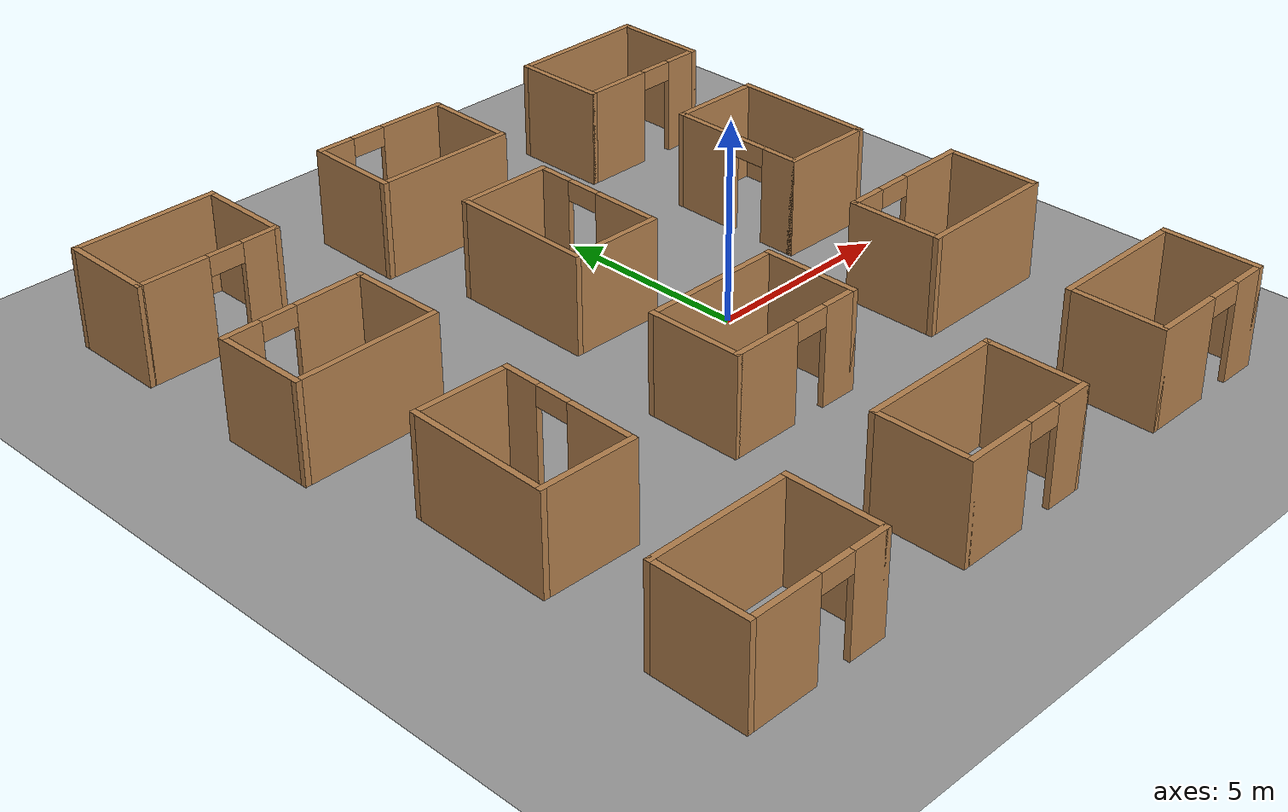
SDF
<sdf version="1.6">
 <world name="default">
  <light name="sun" type="directional">
   <pose>0 0 10 0 -0 0</pose>
   <diffuse>0.8 0.8 0.8 1</diffuse>
   <specular>0.2 0.2 0.2 1</specular>
   <attenuation>
    <range>1000</range>
    <constant>0.9</constant>
    <linear>0.01</linear>
    <quadratic>0.001</quadratic>
   </attenuation>
   <direction>0.5 0.1 -0.9</direction>
  </light>
  <scene><ambient>0.4 0.4 0.4 1</ambient><background>0.7 0.7 0.7 1</background><shadows>1</shadows></scene>
  <physics name="default_physics" default="0" type="ode">
   <max_step_size>0.01</max_step_size>
   <real_time_factor>1</real_time_factor>
   <real_time_update_rate>100</real_time_update_rate>
  </physics>
  <model name="ground_plane_0">
   <static>1</static>
   <link name="link">
    <collision name="collision">
     <geometry><plane><normal>0 0 1</normal><size>100 100</size></plane></geometry>
     <surface><friction><ode><mu>100</mu><mu2>50</mu2></ode></friction></surface>
    </collision>
    <visual name="visual">
     <cast_shadows>0</cast_shadows>
     <geometry><plane><normal>0 0 1</normal><size>100 100</size></plane></geometry>
     <material>
      <script><uri>file://media/materials/scripts/gazebo.material</uri><name>Gazebo/Grey</name></script>
     </material>
    </visual>
    <velocity_decay><linear>0</linear><angular>0</angular></velocity_decay>
   </link>
   <pose>0.497681 0 0 0 -0 0</pose>
  </model>
  <gravity>0 0 -9.8</gravity>
  <magnetic_field>6e-06 2.3e-05 -4.2e-05</magnetic_field>
  <atmosphere type="adiabatic"/>
  <spherical_coordinates>
   <surface_model>EARTH_WGS84</surface_model>
   <latitude_deg>0</latitude_deg>
   <longitude_deg>0</longitude_deg>
   <elevation>0</elevation>
   <heading_deg>0</heading_deg>
  </spherical_coordinates>
  <model name="Small_Room">
   <pose>-2.17108 3.18261 0 0 -0 1.55876</pose>
   <link name="Wall_0">
    <pose>0 -1.175 0 0 -0 0</pose>
    <visual name="Wall_0_Visual_0">
     <pose>-0.9525 0 1.25 0 -0 0</pose>
     <geometry><box><size>1.845 0.15 2.5</size></box></geometry>
     <material>
      <script><uri>file://media/materials/scripts/gazebo.material</uri><name>Gazebo/Wood</name></script>
      <ambient>1 1 1 1</ambient>
     </material>
     <meta><layer>0</layer></meta>
    </visual>
    <collision name="Wall_0_Collision_0">
     <geometry><box><size>1.845 0.15 2.5</size></box></geometry>
     <pose>-0.9525 0 1.25 0 -0 0</pose>
    </collision>
    <visual name="Wall_0_Visual_1">
     <pose>1.3725 0 1.25 0 -0 0</pose>
     <geometry><box><size>1.005 0.15 2.5</size></box></geometry>
     <material>
      <script><uri>file://media/materials/scripts/gazebo.material</uri><name>Gazebo/Wood</name></script>
      <ambient>1 1 1 1</ambient>
     </material>
     <meta><layer>0</layer></meta>
    </visual>
    <collision name="Wall_0_Collision_1">
     <geometry><box><size>1.005 0.15 2.5</size></box></geometry>
     <pose>1.3725 0 1.25 0 -0 0</pose>
    </collision>
    <visual name="Wall_0_Visual_2">
     <pose>0.42 0 2.25 0 -0 0</pose>
     <geometry><box><size>0.9 0.15 0.5</size></box></geometry>
     <material>
      <script><uri>file://media/materials/scripts/gazebo.material</uri><name>Gazebo/Wood</name></script>
      <ambient>1 1 1 1</ambient>
     </material>
     <meta><layer>0</layer></meta>
    </visual>
    <collision name="Wall_0_Collision_2">
     <geometry><box><size>0.9 0.15 0.5</size></box></geometry>
     <pose>0.42 0 2.25 0 -0 0</pose>
    </collision>
   </link>
   <link name="Wall_1">
    <collision name="Wall_1_Collision">
     <geometry><box><size>2.5 0.15 2.5</size></box></geometry>
     <pose>0 0 1.25 0 -0 0</pose>
    </collision>
    <visual name="Wall_1_Visual">
     <pose>0 0 1.25 0 -0 0</pose>
     <geometry><box><size>2.5 0.15 2.5</size></box></geometry>
     <material>
      <script><uri>file://media/materials/scripts/gazebo.material</uri><name>Gazebo/Wood</name></script>
      <ambient>1 1 1 1</ambient>
     </material>
     <meta><layer>0</layer></meta>
    </visual>
    <pose>1.8 0 0 0 -0 1.5708</pose>
   </link>
   <link name="Wall_2">
    <collision name="Wall_2_Collision">
     <geometry><box><size>3.75 0.15 2.5</size></box></geometry>
     <pose>0 0 1.25 0 -0 0</pose>
    </collision>
    <visual name="Wall_2_Visual">
     <pose>0 0 1.25 0 -0 0</pose>
     <geometry><box><size>3.75 0.15 2.5</size></box></geometry>
     <material>
      <script><uri>file://media/materials/scripts/gazebo.material</uri><name>Gazebo/Wood</name></script>
      <ambient>0.760784 0.662745 0.627451 1</ambient>
     </material>
     <meta><layer>0</layer></meta>
    </visual>
    <pose>0 1.175 0 0 -0 3.14159</pose>
   </link>
   <link name="Wall_3">
    <collision name="Wall_3_Collision">
     <geometry><box><size>2.5 0.15 2.5</size></box></geometry>
     <pose>0 0 1.25 0 -0 0</pose>
    </collision>
    <visual name="Wall_3_Visual">
     <pose>0 0 1.25 0 -0 0</pose>
     <geometry><box><size>2.5 0.15 2.5</size></box></geometry>
     <material>
      <script><uri>file://media/materials/scripts/gazebo.material</uri><name>Gazebo/Wood</name></script>
      <ambient>0.760784 0.662745 0.627451 1</ambient>
     </material>
     <meta><layer>0</layer></meta>
    </visual>
    <pose>-1.8 0 0 0 0 -1.5708</pose>
   </link>
   <static>1</static>
  </model>
  <model name="Small_Room_clone">
   <pose>-8.6761 -2.62638 0 0 -0 1.54961</pose>
   <link name="Wall_0">
    <pose>0 -1.175 0 0 -0 0</pose>
    <visual name="Wall_0_Visual_0">
     <pose>-0.9525 0 1.25 0 -0 0</pose>
     <geometry><box><size>1.845 0.15 2.5</size></box></geometry>
     <material>
      <script><uri>file://media/materials/scripts/gazebo.material</uri><name>Gazebo/Wood</name></script>
      <ambient>1 1 1 1</ambient>
     </material>
     <meta><layer>0</layer></meta>
    </visual>
    <collision name="Wall_0_Collision_0">
     <geometry><box><size>1.845 0.15 2.5</size></box></geometry>
     <pose>-0.9525 0 1.25 0 -0 0</pose>
    </collision>
    <visual name="Wall_0_Visual_1">
     <pose>1.3725 0 1.25 0 -0 0</pose>
     <geometry><box><size>1.005 0.15 2.5</size></box></geometry>
     <material>
      <script><uri>file://media/materials/scripts/gazebo.material</uri><name>Gazebo/Wood</name></script>
      <ambient>1 1 1 1</ambient>
     </material>
     <meta><layer>0</layer></meta>
    </visual>
    <collision name="Wall_0_Collision_1">
     <geometry><box><size>1.005 0.15 2.5</size></box></geometry>
     <pose>1.3725 0 1.25 0 -0 0</pose>
    </collision>
    <visual name="Wall_0_Visual_2">
     <pose>0.42 0 2.25 0 -0 0</pose>
     <geometry><box><size>0.9 0.15 0.5</size></box></geometry>
     <material>
      <script><uri>file://media/materials/scripts/gazebo.material</uri><name>Gazebo/Wood</name></script>
      <ambient>1 1 1 1</ambient>
     </material>
     <meta><layer>0</layer></meta>
    </visual>
    <collision name="Wall_0_Collision_2">
     <geometry><box><size>0.9 0.15 0.5</size></box></geometry>
     <pose>0.42 0 2.25 0 -0 0</pose>
    </collision>
   </link>
   <link name="Wall_1">
    <collision name="Wall_1_Collision">
     <geometry><box><size>2.5 0.15 2.5</size></box></geometry>
     <pose>0 0 1.25 0 -0 0</pose>
    </collision>
    <visual name="Wall_1_Visual">
     <pose>0 0 1.25 0 -0 0</pose>
     <geometry><box><size>2.5 0.15 2.5</size></box></geometry>
     <material>
      <script><uri>file://media/materials/scripts/gazebo.material</uri><name>Gazebo/Wood</name></script>
      <ambient>1 1 1 1</ambient>
     </material>
     <meta><layer>0</layer></meta>
    </visual>
    <pose>1.8 0 0 0 -0 1.5708</pose>
   </link>
   <link name="Wall_2">
    <collision name="Wall_2_Collision">
     <geometry><box><size>3.75 0.15 2.5</size></box></geometry>
     <pose>0 0 1.25 0 -0 0</pose>
    </collision>
    <visual name="Wall_2_Visual">
     <pose>0 0 1.25 0 -0 0</pose>
     <geometry><box><size>3.75 0.15 2.5</size></box></geometry>
     <material>
      <script><uri>file://media/materials/scripts/gazebo.material</uri><name>Gazebo/Wood</name></script>
      <ambient>0.760784 0.662745 0.627451 1</ambient>
     </material>
     <meta><layer>0</layer></meta>
    </visual>
    <pose>0 1.175 0 0 -0 3.14159</pose>
   </link>
   <link name="Wall_3">
    <collision name="Wall_3_Collision">
     <geometry><box><size>2.5 0.15 2.5</size></box></geometry>
     <pose>0 0 1.25 0 -0 0</pose>
    </collision>
    <visual name="Wall_3_Visual">
     <pose>0 0 1.25 0 -0 0</pose>
     <geometry><box><size>2.5 0.15 2.5</size></box></geometry>
     <material>
      <script><uri>file://media/materials/scripts/gazebo.material</uri><name>Gazebo/Wood</name></script>
      <ambient>0.760784 0.662745 0.627451 1</ambient>
     </material>
     <meta><layer>0</layer></meta>
    </visual>
    <pose>-1.8 0 0 0 0 -1.5708</pose>
   </link>
   <static>1</static>
  </model>
  <model name="Small_Room_clone_0">
   <pose>4.50171 -2.53332 0 0 0 -3.13544</pose>
   <link name="Wall_0">
    <pose>0 -1.175 0 0 -0 0</pose>
    <visual name="Wall_0_Visual_0">
     <pose>-0.9525 0 1.25 0 -0 0</pose>
     <geometry><box><size>1.845 0.15 2.5</size></box></geometry>
     <material>
      <script><uri>file://media/materials/scripts/gazebo.material</uri><name>Gazebo/Wood</name></script>
      <ambient>1 1 1 1</ambient>
     </material>
     <meta><layer>0</layer></meta>
    </visual>
    <collision name="Wall_0_Collision_0">
     <geometry><box><size>1.845 0.15 2.5</size></box></geometry>
     <pose>-0.9525 0 1.25 0 -0 0</pose>
    </collision>
    <visual name="Wall_0_Visual_1">
     <pose>1.3725 0 1.25 0 -0 0</pose>
     <geometry><box><size>1.005 0.15 2.5</size></box></geometry>
     <material>
      <script><uri>file://media/materials/scripts/gazebo.material</uri><name>Gazebo/Wood</name></script>
      <ambient>1 1 1 1</ambient>
     </material>
     <meta><layer>0</layer></meta>
    </visual>
    <collision name="Wall_0_Collision_1">
     <geometry><box><size>1.005 0.15 2.5</size></box></geometry>
     <pose>1.3725 0 1.25 0 -0 0</pose>
    </collision>
    <visual name="Wall_0_Visual_2">
     <pose>0.42 0 2.25 0 -0 0</pose>
     <geometry><box><size>0.9 0.15 0.5</size></box></geometry>
     <material>
      <script><uri>file://media/materials/scripts/gazebo.material</uri><name>Gazebo/Wood</name></script>
      <ambient>1 1 1 1</ambient>
     </material>
     <meta><layer>0</layer></meta>
    </visual>
    <collision name="Wall_0_Collision_2">
     <geometry><box><size>0.9 0.15 0.5</size></box></geometry>
     <pose>0.42 0 2.25 0 -0 0</pose>
    </collision>
   </link>
   <link name="Wall_1">
    <collision name="Wall_1_Collision">
     <geometry><box><size>2.5 0.15 2.5</size></box></geometry>
     <pose>0 0 1.25 0 -0 0</pose>
    </collision>
    <visual name="Wall_1_Visual">
     <pose>0 0 1.25 0 -0 0</pose>
     <geometry><box><size>2.5 0.15 2.5</size></box></geometry>
     <material>
      <script><uri>file://media/materials/scripts/gazebo.material</uri><name>Gazebo/Wood</name></script>
      <ambient>1 1 1 1</ambient>
     </material>
     <meta><layer>0</layer></meta>
    </visual>
    <pose>1.8 0 0 0 -0 1.5708</pose>
   </link>
   <link name="Wall_2">
    <collision name="Wall_2_Collision">
     <geometry><box><size>3.75 0.15 2.5</size></box></geometry>
     <pose>0 0 1.25 0 -0 0</pose>
    </collision>
    <visual name="Wall_2_Visual">
     <pose>0 0 1.25 0 -0 0</pose>
     <geometry><box><size>3.75 0.15 2.5</size></box></geometry>
     <material>
      <script><uri>file://media/materials/scripts/gazebo.material</uri><name>Gazebo/Wood</name></script>
      <ambient>0.760784 0.662745 0.627451 1</ambient>
     </material>
     <meta><layer>0</layer></meta>
    </visual>
    <pose>0 1.175 0 0 -0 3.14159</pose>
   </link>
   <link name="Wall_3">
    <collision name="Wall_3_Collision">
     <geometry><box><size>2.5 0.15 2.5</size></box></geometry>
     <pose>0 0 1.25 0 -0 0</pose>
    </collision>
    <visual name="Wall_3_Visual">
     <pose>0 0 1.25 0 -0 0</pose>
     <geometry><box><size>2.5 0.15 2.5</size></box></geometry>
     <material>
      <script><uri>file://media/materials/scripts/gazebo.material</uri><name>Gazebo/Wood</name></script>
      <ambient>0.760784 0.662745 0.627451 1</ambient>
     </material>
     <meta><layer>0</layer></meta>
    </visual>
    <pose>-1.8 0 0 0 0 -1.5708</pose>
   </link>
   <static>1</static>
  </model>
  <model name="Small_Room_clone_1">
   <pose>4.53627 2.79284 0 0 0 -1.5813</pose>
   <link name="Wall_0">
    <pose>0 -1.175 0 0 -0 0</pose>
    <visual name="Wall_0_Visual_0">
     <pose>-0.9525 0 1.25 0 -0 0</pose>
     <geometry><box><size>1.845 0.15 2.5</size></box></geometry>
     <material>
      <script><uri>file://media/materials/scripts/gazebo.material</uri><name>Gazebo/Wood</name></script>
      <ambient>1 1 1 1</ambient>
     </material>
     <meta><layer>0</layer></meta>
    </visual>
    <collision name="Wall_0_Collision_0">
     <geometry><box><size>1.845 0.15 2.5</size></box></geometry>
     <pose>-0.9525 0 1.25 0 -0 0</pose>
    </collision>
    <visual name="Wall_0_Visual_1">
     <pose>1.3725 0 1.25 0 -0 0</pose>
     <geometry><box><size>1.005 0.15 2.5</size></box></geometry>
     <material>
      <script><uri>file://media/materials/scripts/gazebo.material</uri><name>Gazebo/Wood</name></script>
      <ambient>1 1 1 1</ambient>
     </material>
     <meta><layer>0</layer></meta>
    </visual>
    <collision name="Wall_0_Collision_1">
     <geometry><box><size>1.005 0.15 2.5</size></box></geometry>
     <pose>1.3725 0 1.25 0 -0 0</pose>
    </collision>
    <visual name="Wall_0_Visual_2">
     <pose>0.42 0 2.25 0 -0 0</pose>
     <geometry><box><size>0.9 0.15 0.5</size></box></geometry>
     <material>
      <script><uri>file://media/materials/scripts/gazebo.material</uri><name>Gazebo/Wood</name></script>
      <ambient>1 1 1 1</ambient>
     </material>
     <meta><layer>0</layer></meta>
    </visual>
    <collision name="Wall_0_Collision_2">
     <geometry><box><size>0.9 0.15 0.5</size></box></geometry>
     <pose>0.42 0 2.25 0 -0 0</pose>
    </collision>
   </link>
   <link name="Wall_1">
    <collision name="Wall_1_Collision">
     <geometry><box><size>2.5 0.15 2.5</size></box></geometry>
     <pose>0 0 1.25 0 -0 0</pose>
    </collision>
    <visual name="Wall_1_Visual">
     <pose>0 0 1.25 0 -0 0</pose>
     <geometry><box><size>2.5 0.15 2.5</size></box></geometry>
     <material>
      <script><uri>file://media/materials/scripts/gazebo.material</uri><name>Gazebo/Wood</name></script>
      <ambient>1 1 1 1</ambient>
     </material>
     <meta><layer>0</layer></meta>
    </visual>
    <pose>1.8 0 0 0 -0 1.5708</pose>
   </link>
   <link name="Wall_2">
    <collision name="Wall_2_Collision">
     <geometry><box><size>3.75 0.15 2.5</size></box></geometry>
     <pose>0 0 1.25 0 -0 0</pose>
    </collision>
    <visual name="Wall_2_Visual">
     <pose>0 0 1.25 0 -0 0</pose>
     <geometry><box><size>3.75 0.15 2.5</size></box></geometry>
     <material>
      <script><uri>file://media/materials/scripts/gazebo.material</uri><name>Gazebo/Wood</name></script>
      <ambient>0.760784 0.662745 0.627451 1</ambient>
     </material>
     <meta><layer>0</layer></meta>
    </visual>
    <pose>0 1.175 0 0 -0 3.14159</pose>
   </link>
   <link name="Wall_3">
    <collision name="Wall_3_Collision">
     <geometry><box><size>2.5 0.15 2.5</size></box></geometry>
     <pose>0 0 1.25 0 -0 0</pose>
    </collision>
    <visual name="Wall_3_Visual">
     <pose>0 0 1.25 0 -0 0</pose>
     <geometry><box><size>2.5 0.15 2.5</size></box></geometry>
     <material>
      <script><uri>file://media/materials/scripts/gazebo.material</uri><name>Gazebo/Wood</name></script>
      <ambient>0.760784 0.662745 0.627451 1</ambient>
     </material>
     <meta><layer>0</layer></meta>
    </visual>
    <pose>-1.8 0 0 0 0 -1.5708</pose>
   </link>
   <static>1</static>
  </model>
  <model name="Small_Room_clone_2">
   <pose>4.48448 8.2328 0 0 -0 0</pose>
   <link name="Wall_0">
    <pose>0 -1.175 0 0 -0 0</pose>
    <visual name="Wall_0_Visual_0">
     <pose>-0.9525 0 1.25 0 -0 0</pose>
     <geometry><box><size>1.845 0.15 2.5</size></box></geometry>
     <material>
      <script><uri>file://media/materials/scripts/gazebo.material</uri><name>Gazebo/Wood</name></script>
      <ambient>1 1 1 1</ambient>
     </material>
     <meta><layer>0</layer></meta>
    </visual>
    <collision name="Wall_0_Collision_0">
     <geometry><box><size>1.845 0.15 2.5</size></box></geometry>
     <pose>-0.9525 0 1.25 0 -0 0</pose>
    </collision>
    <visual name="Wall_0_Visual_1">
     <pose>1.3725 0 1.25 0 -0 0</pose>
     <geometry><box><size>1.005 0.15 2.5</size></box></geometry>
     <material>
      <script><uri>file://media/materials/scripts/gazebo.material</uri><name>Gazebo/Wood</name></script>
      <ambient>1 1 1 1</ambient>
     </material>
     <meta><layer>0</layer></meta>
    </visual>
    <collision name="Wall_0_Collision_1">
     <geometry><box><size>1.005 0.15 2.5</size></box></geometry>
     <pose>1.3725 0 1.25 0 -0 0</pose>
    </collision>
    <visual name="Wall_0_Visual_2">
     <pose>0.42 0 2.25 0 -0 0</pose>
     <geometry><box><size>0.9 0.15 0.5</size></box></geometry>
     <material>
      <script><uri>file://media/materials/scripts/gazebo.material</uri><name>Gazebo/Wood</name></script>
      <ambient>1 1 1 1</ambient>
     </material>
     <meta><layer>0</layer></meta>
    </visual>
    <collision name="Wall_0_Collision_2">
     <geometry><box><size>0.9 0.15 0.5</size></box></geometry>
     <pose>0.42 0 2.25 0 -0 0</pose>
    </collision>
   </link>
   <link name="Wall_1">
    <collision name="Wall_1_Collision">
     <geometry><box><size>2.5 0.15 2.5</size></box></geometry>
     <pose>0 0 1.25 0 -0 0</pose>
    </collision>
    <visual name="Wall_1_Visual">
     <pose>0 0 1.25 0 -0 0</pose>
     <geometry><box><size>2.5 0.15 2.5</size></box></geometry>
     <material>
      <script><uri>file://media/materials/scripts/gazebo.material</uri><name>Gazebo/Wood</name></script>
      <ambient>1 1 1 1</ambient>
     </material>
     <meta><layer>0</layer></meta>
    </visual>
    <pose>1.8 0 0 0 -0 1.5708</pose>
   </link>
   <link name="Wall_2">
    <collision name="Wall_2_Collision">
     <geometry><box><size>3.75 0.15 2.5</size></box></geometry>
     <pose>0 0 1.25 0 -0 0</pose>
    </collision>
    <visual name="Wall_2_Visual">
     <pose>0 0 1.25 0 -0 0</pose>
     <geometry><box><size>3.75 0.15 2.5</size></box></geometry>
     <material>
      <script><uri>file://media/materials/scripts/gazebo.material</uri><name>Gazebo/Wood</name></script>
      <ambient>0.760784 0.662745 0.627451 1</ambient>
     </material>
     <meta><layer>0</layer></meta>
    </visual>
    <pose>0 1.175 0 0 -0 3.14159</pose>
   </link>
   <link name="Wall_3">
    <collision name="Wall_3_Collision">
     <geometry><box><size>2.5 0.15 2.5</size></box></geometry>
     <pose>0 0 1.25 0 -0 0</pose>
    </collision>
    <visual name="Wall_3_Visual">
     <pose>0 0 1.25 0 -0 0</pose>
     <geometry><box><size>2.5 0.15 2.5</size></box></geometry>
     <material>
      <script><uri>file://media/materials/scripts/gazebo.material</uri><name>Gazebo/Wood</name></script>
      <ambient>0.760784 0.662745 0.627451 1</ambient>
     </material>
     <meta><layer>0</layer></meta>
    </visual>
    <pose>-1.8 0 0 0 0 -1.5708</pose>
   </link>
   <static>1</static>
  </model>
  <model name="Small_Room_clone_3">
   <pose>-2.21611 8.1824 0 0 -0 3.12949</pose>
   <link name="Wall_0">
    <pose>0 -1.175 0 0 -0 0</pose>
    <visual name="Wall_0_Visual_0">
     <pose>-0.9525 0 1.25 0 -0 0</pose>
     <geometry><box><size>1.845 0.15 2.5</size></box></geometry>
     <material>
      <script><uri>file://media/materials/scripts/gazebo.material</uri><name>Gazebo/Wood</name></script>
      <ambient>1 1 1 1</ambient>
     </material>
     <meta><layer>0</layer></meta>
    </visual>
    <collision name="Wall_0_Collision_0">
     <geometry><box><size>1.845 0.15 2.5</size></box></geometry>
     <pose>-0.9525 0 1.25 0 -0 0</pose>
    </collision>
    <visual name="Wall_0_Visual_1">
     <pose>1.3725 0 1.25 0 -0 0</pose>
     <geometry><box><size>1.005 0.15 2.5</size></box></geometry>
     <material>
      <script><uri>file://media/materials/scripts/gazebo.material</uri><name>Gazebo/Wood</name></script>
      <ambient>1 1 1 1</ambient>
     </material>
     <meta><layer>0</layer></meta>
    </visual>
    <collision name="Wall_0_Collision_1">
     <geometry><box><size>1.005 0.15 2.5</size></box></geometry>
     <pose>1.3725 0 1.25 0 -0 0</pose>
    </collision>
    <visual name="Wall_0_Visual_2">
     <pose>0.42 0 2.25 0 -0 0</pose>
     <geometry><box><size>0.9 0.15 0.5</size></box></geometry>
     <material>
      <script><uri>file://media/materials/scripts/gazebo.material</uri><name>Gazebo/Wood</name></script>
      <ambient>1 1 1 1</ambient>
     </material>
     <meta><layer>0</layer></meta>
    </visual>
    <collision name="Wall_0_Collision_2">
     <geometry><box><size>0.9 0.15 0.5</size></box></geometry>
     <pose>0.42 0 2.25 0 -0 0</pose>
    </collision>
   </link>
   <link name="Wall_1">
    <collision name="Wall_1_Collision">
     <geometry><box><size>2.5 0.15 2.5</size></box></geometry>
     <pose>0 0 1.25 0 -0 0</pose>
    </collision>
    <visual name="Wall_1_Visual">
     <pose>0 0 1.25 0 -0 0</pose>
     <geometry><box><size>2.5 0.15 2.5</size></box></geometry>
     <material>
      <script><uri>file://media/materials/scripts/gazebo.material</uri><name>Gazebo/Wood</name></script>
      <ambient>1 1 1 1</ambient>
     </material>
     <meta><layer>0</layer></meta>
    </visual>
    <pose>1.8 0 0 0 -0 1.5708</pose>
   </link>
   <link name="Wall_2">
    <collision name="Wall_2_Collision">
     <geometry><box><size>3.75 0.15 2.5</size></box></geometry>
     <pose>0 0 1.25 0 -0 0</pose>
    </collision>
    <visual name="Wall_2_Visual">
     <pose>0 0 1.25 0 -0 0</pose>
     <geometry><box><size>3.75 0.15 2.5</size></box></geometry>
     <material>
      <script><uri>file://media/materials/scripts/gazebo.material</uri><name>Gazebo/Wood</name></script>
      <ambient>0.760784 0.662745 0.627451 1</ambient>
     </material>
     <meta><layer>0</layer></meta>
    </visual>
    <pose>0 1.175 0 0 -0 3.14159</pose>
   </link>
   <link name="Wall_3">
    <collision name="Wall_3_Collision">
     <geometry><box><size>2.5 0.15 2.5</size></box></geometry>
     <pose>0 0 1.25 0 -0 0</pose>
    </collision>
    <visual name="Wall_3_Visual">
     <pose>0 0 1.25 0 -0 0</pose>
     <geometry><box><size>2.5 0.15 2.5</size></box></geometry>
     <material>
      <script><uri>file://media/materials/scripts/gazebo.material</uri><name>Gazebo/Wood</name></script>
      <ambient>0.760784 0.662745 0.627451 1</ambient>
     </material>
     <meta><layer>0</layer></meta>
    </visual>
    <pose>-1.8 0 0 0 0 -1.5708</pose>
   </link>
   <static>1</static>
  </model>
  <model name="Small_Room_clone_4">
   <pose>-8.88864 8.27688 0 0 -0 0</pose>
   <link name="Wall_0">
    <pose>0 -1.175 0 0 -0 0</pose>
    <visual name="Wall_0_Visual_0">
     <pose>-0.9525 0 1.25 0 -0 0</pose>
     <geometry><box><size>1.845 0.15 2.5</size></box></geometry>
     <material>
      <script><uri>file://media/materials/scripts/gazebo.material</uri><name>Gazebo/Wood</name></script>
      <ambient>1 1 1 1</ambient>
     </material>
     <meta><layer>0</layer></meta>
    </visual>
    <collision name="Wall_0_Collision_0">
     <geometry><box><size>1.845 0.15 2.5</size></box></geometry>
     <pose>-0.9525 0 1.25 0 -0 0</pose>
    </collision>
    <visual name="Wall_0_Visual_1">
     <pose>1.3725 0 1.25 0 -0 0</pose>
     <geometry><box><size>1.005 0.15 2.5</size></box></geometry>
     <material>
      <script><uri>file://media/materials/scripts/gazebo.material</uri><name>Gazebo/Wood</name></script>
      <ambient>1 1 1 1</ambient>
     </material>
     <meta><layer>0</layer></meta>
    </visual>
    <collision name="Wall_0_Collision_1">
     <geometry><box><size>1.005 0.15 2.5</size></box></geometry>
     <pose>1.3725 0 1.25 0 -0 0</pose>
    </collision>
    <visual name="Wall_0_Visual_2">
     <pose>0.42 0 2.25 0 -0 0</pose>
     <geometry><box><size>0.9 0.15 0.5</size></box></geometry>
     <material>
      <script><uri>file://media/materials/scripts/gazebo.material</uri><name>Gazebo/Wood</name></script>
      <ambient>1 1 1 1</ambient>
     </material>
     <meta><layer>0</layer></meta>
    </visual>
    <collision name="Wall_0_Collision_2">
     <geometry><box><size>0.9 0.15 0.5</size></box></geometry>
     <pose>0.42 0 2.25 0 -0 0</pose>
    </collision>
   </link>
   <link name="Wall_1">
    <collision name="Wall_1_Collision">
     <geometry><box><size>2.5 0.15 2.5</size></box></geometry>
     <pose>0 0 1.25 0 -0 0</pose>
    </collision>
    <visual name="Wall_1_Visual">
     <pose>0 0 1.25 0 -0 0</pose>
     <geometry><box><size>2.5 0.15 2.5</size></box></geometry>
     <material>
      <script><uri>file://media/materials/scripts/gazebo.material</uri><name>Gazebo/Wood</name></script>
      <ambient>1 1 1 1</ambient>
     </material>
     <meta><layer>0</layer></meta>
    </visual>
    <pose>1.8 0 0 0 -0 1.5708</pose>
   </link>
   <link name="Wall_2">
    <collision name="Wall_2_Collision">
     <geometry><box><size>3.75 0.15 2.5</size></box></geometry>
     <pose>0 0 1.25 0 -0 0</pose>
    </collision>
    <visual name="Wall_2_Visual">
     <pose>0 0 1.25 0 -0 0</pose>
     <geometry><box><size>3.75 0.15 2.5</size></box></geometry>
     <material>
      <script><uri>file://media/materials/scripts/gazebo.material</uri><name>Gazebo/Wood</name></script>
      <ambient>0.760784 0.662745 0.627451 1</ambient>
     </material>
     <meta><layer>0</layer></meta>
    </visual>
    <pose>0 1.175 0 0 -0 3.14159</pose>
   </link>
   <link name="Wall_3">
    <collision name="Wall_3_Collision">
     <geometry><box><size>2.5 0.15 2.5</size></box></geometry>
     <pose>0 0 1.25 0 -0 0</pose>
    </collision>
    <visual name="Wall_3_Visual">
     <pose>0 0 1.25 0 -0 0</pose>
     <geometry><box><size>2.5 0.15 2.5</size></box></geometry>
     <material>
      <script><uri>file://media/materials/scripts/gazebo.material</uri><name>Gazebo/Wood</name></script>
      <ambient>0.760784 0.662745 0.627451 1</ambient>
     </material>
     <meta><layer>0</layer></meta>
    </visual>
    <pose>-1.8 0 0 0 0 -1.5708</pose>
   </link>
   <static>1</static>
  </model>
  <model name="Small_Room_clone_5">
   <pose>-8.90849 2.92035 0 0 0 -3.12829</pose>
   <link name="Wall_0">
    <pose>0 -1.175 0 0 -0 0</pose>
    <visual name="Wall_0_Visual_0">
     <pose>-0.9525 0 1.25 0 -0 0</pose>
     <geometry><box><size>1.845 0.15 2.5</size></box></geometry>
     <material>
      <script><uri>file://media/materials/scripts/gazebo.material</uri><name>Gazebo/Wood</name></script>
      <ambient>1 1 1 1</ambient>
     </material>
     <meta><layer>0</layer></meta>
    </visual>
    <collision name="Wall_0_Collision_0">
     <geometry><box><size>1.845 0.15 2.5</size></box></geometry>
     <pose>-0.9525 0 1.25 0 -0 0</pose>
    </collision>
    <visual name="Wall_0_Visual_1">
     <pose>1.3725 0 1.25 0 -0 0</pose>
     <geometry><box><size>1.005 0.15 2.5</size></box></geometry>
     <material>
      <script><uri>file://media/materials/scripts/gazebo.material</uri><name>Gazebo/Wood</name></script>
      <ambient>1 1 1 1</ambient>
     </material>
     <meta><layer>0</layer></meta>
    </visual>
    <collision name="Wall_0_Collision_1">
     <geometry><box><size>1.005 0.15 2.5</size></box></geometry>
     <pose>1.3725 0 1.25 0 -0 0</pose>
    </collision>
    <visual name="Wall_0_Visual_2">
     <pose>0.42 0 2.25 0 -0 0</pose>
     <geometry><box><size>0.9 0.15 0.5</size></box></geometry>
     <material>
      <script><uri>file://media/materials/scripts/gazebo.material</uri><name>Gazebo/Wood</name></script>
      <ambient>1 1 1 1</ambient>
     </material>
     <meta><layer>0</layer></meta>
    </visual>
    <collision name="Wall_0_Collision_2">
     <geometry><box><size>0.9 0.15 0.5</size></box></geometry>
     <pose>0.42 0 2.25 0 -0 0</pose>
    </collision>
   </link>
   <link name="Wall_1">
    <collision name="Wall_1_Collision">
     <geometry><box><size>2.5 0.15 2.5</size></box></geometry>
     <pose>0 0 1.25 0 -0 0</pose>
    </collision>
    <visual name="Wall_1_Visual">
     <pose>0 0 1.25 0 -0 0</pose>
     <geometry><box><size>2.5 0.15 2.5</size></box></geometry>
     <material>
      <script><uri>file://media/materials/scripts/gazebo.material</uri><name>Gazebo/Wood</name></script>
      <ambient>1 1 1 1</ambient>
     </material>
     <meta><layer>0</layer></meta>
    </visual>
    <pose>1.8 0 0 0 -0 1.5708</pose>
   </link>
   <link name="Wall_2">
    <collision name="Wall_2_Collision">
     <geometry><box><size>3.75 0.15 2.5</size></box></geometry>
     <pose>0 0 1.25 0 -0 0</pose>
    </collision>
    <visual name="Wall_2_Visual">
     <pose>0 0 1.25 0 -0 0</pose>
     <geometry><box><size>3.75 0.15 2.5</size></box></geometry>
     <material>
      <script><uri>file://media/materials/scripts/gazebo.material</uri><name>Gazebo/Wood</name></script>
      <ambient>0.760784 0.662745 0.627451 1</ambient>
     </material>
     <meta><layer>0</layer></meta>
    </visual>
    <pose>0 1.175 0 0 -0 3.14159</pose>
   </link>
   <link name="Wall_3">
    <collision name="Wall_3_Collision">
     <geometry><box><size>2.5 0.15 2.5</size></box></geometry>
     <pose>0 0 1.25 0 -0 0</pose>
    </collision>
    <visual name="Wall_3_Visual">
     <pose>0 0 1.25 0 -0 0</pose>
     <geometry><box><size>2.5 0.15 2.5</size></box></geometry>
     <material>
      <script><uri>file://media/materials/scripts/gazebo.material</uri><name>Gazebo/Wood</name></script>
      <ambient>0.760784 0.662745 0.627451 1</ambient>
     </material>
     <meta><layer>0</layer></meta>
    </visual>
    <pose>-1.8 0 0 0 0 -1.5708</pose>
   </link>
   <static>1</static>
  </model>
  <model name="Small_Room_clone_6">
   <pose>-2.15093 -2.67188 0 0 -0 0</pose>
   <link name="Wall_0">
    <pose>0 -1.175 0 0 -0 0</pose>
    <visual name="Wall_0_Visual_0">
     <pose>-0.9525 0 1.25 0 -0 0</pose>
     <geometry><box><size>1.845 0.15 2.5</size></box></geometry>
     <material>
      <script><uri>file://media/materials/scripts/gazebo.material</uri><name>Gazebo/Wood</name></script>
      <ambient>1 1 1 1</ambient>
     </material>
     <meta><layer>0</layer></meta>
    </visual>
    <collision name="Wall_0_Collision_0">
     <geometry><box><size>1.845 0.15 2.5</size></box></geometry>
     <pose>-0.9525 0 1.25 0 -0 0</pose>
    </collision>
    <visual name="Wall_0_Visual_1">
     <pose>1.3725 0 1.25 0 -0 0</pose>
     <geometry><box><size>1.005 0.15 2.5</size></box></geometry>
     <material>
      <script><uri>file://media/materials/scripts/gazebo.material</uri><name>Gazebo/Wood</name></script>
      <ambient>1 1 1 1</ambient>
     </material>
     <meta><layer>0</layer></meta>
    </visual>
    <collision name="Wall_0_Collision_1">
     <geometry><box><size>1.005 0.15 2.5</size></box></geometry>
     <pose>1.3725 0 1.25 0 -0 0</pose>
    </collision>
    <visual name="Wall_0_Visual_2">
     <pose>0.42 0 2.25 0 -0 0</pose>
     <geometry><box><size>0.9 0.15 0.5</size></box></geometry>
     <material>
      <script><uri>file://media/materials/scripts/gazebo.material</uri><name>Gazebo/Wood</name></script>
      <ambient>1 1 1 1</ambient>
     </material>
     <meta><layer>0</layer></meta>
    </visual>
    <collision name="Wall_0_Collision_2">
     <geometry><box><size>0.9 0.15 0.5</size></box></geometry>
     <pose>0.42 0 2.25 0 -0 0</pose>
    </collision>
   </link>
   <link name="Wall_1">
    <collision name="Wall_1_Collision">
     <geometry><box><size>2.5 0.15 2.5</size></box></geometry>
     <pose>0 0 1.25 0 -0 0</pose>
    </collision>
    <visual name="Wall_1_Visual">
     <pose>0 0 1.25 0 -0 0</pose>
     <geometry><box><size>2.5 0.15 2.5</size></box></geometry>
     <material>
      <script><uri>file://media/materials/scripts/gazebo.material</uri><name>Gazebo/Wood</name></script>
      <ambient>1 1 1 1</ambient>
     </material>
     <meta><layer>0</layer></meta>
    </visual>
    <pose>1.8 0 0 0 -0 1.5708</pose>
   </link>
   <link name="Wall_2">
    <collision name="Wall_2_Collision">
     <geometry><box><size>3.75 0.15 2.5</size></box></geometry>
     <pose>0 0 1.25 0 -0 0</pose>
    </collision>
    <visual name="Wall_2_Visual">
     <pose>0 0 1.25 0 -0 0</pose>
     <geometry><box><size>3.75 0.15 2.5</size></box></geometry>
     <material>
      <script><uri>file://media/materials/scripts/gazebo.material</uri><name>Gazebo/Wood</name></script>
      <ambient>0.760784 0.662745 0.627451 1</ambient>
     </material>
     <meta><layer>0</layer></meta>
    </visual>
    <pose>0 1.175 0 0 -0 3.14159</pose>
   </link>
   <link name="Wall_3">
    <collision name="Wall_3_Collision">
     <geometry><box><size>2.5 0.15 2.5</size></box></geometry>
     <pose>0 0 1.25 0 -0 0</pose>
    </collision>
    <visual name="Wall_3_Visual">
     <pose>0 0 1.25 0 -0 0</pose>
     <geometry><box><size>2.5 0.15 2.5</size></box></geometry>
     <material>
      <script><uri>file://media/materials/scripts/gazebo.material</uri><name>Gazebo/Wood</name></script>
      <ambient>0.760784 0.662745 0.627451 1</ambient>
     </material>
     <meta><layer>0</layer></meta>
    </visual>
    <pose>-1.8 0 0 0 0 -1.5708</pose>
   </link>
   <static>1</static>
  </model>
  <model name="Small_Room_clone_6_clone">
   <pose>-1.8797 -8.31125 0 0 -0 0</pose>
   <link name="Wall_0">
    <pose>0 -1.175 0 0 -0 0</pose>
    <visual name="Wall_0_Visual_0">
     <pose>-0.9525 0 1.25 0 -0 0</pose>
     <geometry><box><size>1.845 0.15 2.5</size></box></geometry>
     <material>
      <script><uri>file://media/materials/scripts/gazebo.material</uri><name>Gazebo/Wood</name></script>
      <ambient>1 1 1 1</ambient>
     </material>
     <meta><layer>0</layer></meta>
    </visual>
    <collision name="Wall_0_Collision_0">
     <geometry><box><size>1.845 0.15 2.5</size></box></geometry>
     <pose>-0.9525 0 1.25 0 -0 0</pose>
    </collision>
    <visual name="Wall_0_Visual_1">
     <pose>1.3725 0 1.25 0 -0 0</pose>
     <geometry><box><size>1.005 0.15 2.5</size></box></geometry>
     <material>
      <script><uri>file://media/materials/scripts/gazebo.material</uri><name>Gazebo/Wood</name></script>
      <ambient>1 1 1 1</ambient>
     </material>
     <meta><layer>0</layer></meta>
    </visual>
    <collision name="Wall_0_Collision_1">
     <geometry><box><size>1.005 0.15 2.5</size></box></geometry>
     <pose>1.3725 0 1.25 0 -0 0</pose>
    </collision>
    <visual name="Wall_0_Visual_2">
     <pose>0.42 0 2.25 0 -0 0</pose>
     <geometry><box><size>0.9 0.15 0.5</size></box></geometry>
     <material>
      <script><uri>file://media/materials/scripts/gazebo.material</uri><name>Gazebo/Wood</name></script>
      <ambient>1 1 1 1</ambient>
     </material>
     <meta><layer>0</layer></meta>
    </visual>
    <collision name="Wall_0_Collision_2">
     <geometry><box><size>0.9 0.15 0.5</size></box></geometry>
     <pose>0.42 0 2.25 0 -0 0</pose>
    </collision>
   </link>
   <link name="Wall_1">
    <collision name="Wall_1_Collision">
     <geometry><box><size>2.5 0.15 2.5</size></box></geometry>
     <pose>0 0 1.25 0 -0 0</pose>
    </collision>
    <visual name="Wall_1_Visual">
     <pose>0 0 1.25 0 -0 0</pose>
     <geometry><box><size>2.5 0.15 2.5</size></box></geometry>
     <material>
      <script><uri>file://media/materials/scripts/gazebo.material</uri><name>Gazebo/Wood</name></script>
      <ambient>1 1 1 1</ambient>
     </material>
     <meta><layer>0</layer></meta>
    </visual>
    <pose>1.8 0 0 0 -0 1.5708</pose>
   </link>
   <link name="Wall_2">
    <collision name="Wall_2_Collision">
     <geometry><box><size>3.75 0.15 2.5</size></box></geometry>
     <pose>0 0 1.25 0 -0 0</pose>
    </collision>
    <visual name="Wall_2_Visual">
     <pose>0 0 1.25 0 -0 0</pose>
     <geometry><box><size>3.75 0.15 2.5</size></box></geometry>
     <material>
      <script><uri>file://media/materials/scripts/gazebo.material</uri><name>Gazebo/Wood</name></script>
      <ambient>0.760784 0.662745 0.627451 1</ambient>
     </material>
     <meta><layer>0</layer></meta>
    </visual>
    <pose>0 1.175 0 0 -0 3.14159</pose>
   </link>
   <link name="Wall_3">
    <collision name="Wall_3_Collision">
     <geometry><box><size>2.5 0.15 2.5</size></box></geometry>
     <pose>0 0 1.25 0 -0 0</pose>
    </collision>
    <visual name="Wall_3_Visual">
     <pose>0 0 1.25 0 -0 0</pose>
     <geometry><box><size>2.5 0.15 2.5</size></box></geometry>
     <material>
      <script><uri>file://media/materials/scripts/gazebo.material</uri><name>Gazebo/Wood</name></script>
      <ambient>0.760784 0.662745 0.627451 1</ambient>
     </material>
     <meta><layer>0</layer></meta>
    </visual>
    <pose>-1.8 0 0 0 0 -1.5708</pose>
   </link>
   <static>1</static>
  </model>
  <model name="Small_Room_clone_6_clone_0">
   <pose>-8.24169 -8.48704 0 0 -0 0</pose>
   <link name="Wall_0">
    <pose>0 -1.175 0 0 -0 0</pose>
    <visual name="Wall_0_Visual_0">
     <pose>-0.9525 0 1.25 0 -0 0</pose>
     <geometry><box><size>1.845 0.15 2.5</size></box></geometry>
     <material>
      <script><uri>file://media/materials/scripts/gazebo.material</uri><name>Gazebo/Wood</name></script>
      <ambient>1 1 1 1</ambient>
     </material>
     <meta><layer>0</layer></meta>
    </visual>
    <collision name="Wall_0_Collision_0">
     <geometry><box><size>1.845 0.15 2.5</size></box></geometry>
     <pose>-0.9525 0 1.25 0 -0 0</pose>
    </collision>
    <visual name="Wall_0_Visual_1">
     <pose>1.3725 0 1.25 0 -0 0</pose>
     <geometry><box><size>1.005 0.15 2.5</size></box></geometry>
     <material>
      <script><uri>file://media/materials/scripts/gazebo.material</uri><name>Gazebo/Wood</name></script>
      <ambient>1 1 1 1</ambient>
     </material>
     <meta><layer>0</layer></meta>
    </visual>
    <collision name="Wall_0_Collision_1">
     <geometry><box><size>1.005 0.15 2.5</size></box></geometry>
     <pose>1.3725 0 1.25 0 -0 0</pose>
    </collision>
    <visual name="Wall_0_Visual_2">
     <pose>0.42 0 2.25 0 -0 0</pose>
     <geometry><box><size>0.9 0.15 0.5</size></box></geometry>
     <material>
      <script><uri>file://media/materials/scripts/gazebo.material</uri><name>Gazebo/Wood</name></script>
      <ambient>1 1 1 1</ambient>
     </material>
     <meta><layer>0</layer></meta>
    </visual>
    <collision name="Wall_0_Collision_2">
     <geometry><box><size>0.9 0.15 0.5</size></box></geometry>
     <pose>0.42 0 2.25 0 -0 0</pose>
    </collision>
   </link>
   <link name="Wall_1">
    <collision name="Wall_1_Collision">
     <geometry><box><size>2.5 0.15 2.5</size></box></geometry>
     <pose>0 0 1.25 0 -0 0</pose>
    </collision>
    <visual name="Wall_1_Visual">
     <pose>0 0 1.25 0 -0 0</pose>
     <geometry><box><size>2.5 0.15 2.5</size></box></geometry>
     <material>
      <script><uri>file://media/materials/scripts/gazebo.material</uri><name>Gazebo/Wood</name></script>
      <ambient>1 1 1 1</ambient>
     </material>
     <meta><layer>0</layer></meta>
    </visual>
    <pose>1.8 0 0 0 -0 1.5708</pose>
   </link>
   <link name="Wall_2">
    <collision name="Wall_2_Collision">
     <geometry><box><size>3.75 0.15 2.5</size></box></geometry>
     <pose>0 0 1.25 0 -0 0</pose>
    </collision>
    <visual name="Wall_2_Visual">
     <pose>0 0 1.25 0 -0 0</pose>
     <geometry><box><size>3.75 0.15 2.5</size></box></geometry>
     <material>
      <script><uri>file://media/materials/scripts/gazebo.material</uri><name>Gazebo/Wood</name></script>
      <ambient>0.760784 0.662745 0.627451 1</ambient>
     </material>
     <meta><layer>0</layer></meta>
    </visual>
    <pose>0 1.175 0 0 -0 3.14159</pose>
   </link>
   <link name="Wall_3">
    <collision name="Wall_3_Collision">
     <geometry><box><size>2.5 0.15 2.5</size></box></geometry>
     <pose>0 0 1.25 0 -0 0</pose>
    </collision>
    <visual name="Wall_3_Visual">
     <pose>0 0 1.25 0 -0 0</pose>
     <geometry><box><size>2.5 0.15 2.5</size></box></geometry>
     <material>
      <script><uri>file://media/materials/scripts/gazebo.material</uri><name>Gazebo/Wood</name></script>
      <ambient>0.760784 0.662745 0.627451 1</ambient>
     </material>
     <meta><layer>0</layer></meta>
    </visual>
    <pose>-1.8 0 0 0 0 -1.5708</pose>
   </link>
   <static>1</static>
  </model>
  <model name="Small_Room_clone_6_clone_1">
   <pose>4.64059 -8.29003 0 0 -0 0</pose>
   <link name="Wall_0">
    <pose>0 -1.175 0 0 -0 0</pose>
    <visual name="Wall_0_Visual_0">
     <pose>-0.9525 0 1.25 0 -0 0</pose>
     <geometry><box><size>1.845 0.15 2.5</size></box></geometry>
     <material>
      <script><uri>file://media/materials/scripts/gazebo.material</uri><name>Gazebo/Wood</name></script>
      <ambient>1 1 1 1</ambient>
     </material>
     <meta><layer>0</layer></meta>
    </visual>
    <collision name="Wall_0_Collision_0">
     <geometry><box><size>1.845 0.15 2.5</size></box></geometry>
     <pose>-0.9525 0 1.25 0 -0 0</pose>
    </collision>
    <visual name="Wall_0_Visual_1">
     <pose>1.3725 0 1.25 0 -0 0</pose>
     <geometry><box><size>1.005 0.15 2.5</size></box></geometry>
     <material>
      <script><uri>file://media/materials/scripts/gazebo.material</uri><name>Gazebo/Wood</name></script>
      <ambient>1 1 1 1</ambient>
     </material>
     <meta><layer>0</layer></meta>
    </visual>
    <collision name="Wall_0_Collision_1">
     <geometry><box><size>1.005 0.15 2.5</size></box></geometry>
     <pose>1.3725 0 1.25 0 -0 0</pose>
    </collision>
    <visual name="Wall_0_Visual_2">
     <pose>0.42 0 2.25 0 -0 0</pose>
     <geometry><box><size>0.9 0.15 0.5</size></box></geometry>
     <material>
      <script><uri>file://media/materials/scripts/gazebo.material</uri><name>Gazebo/Wood</name></script>
      <ambient>1 1 1 1</ambient>
     </material>
     <meta><layer>0</layer></meta>
    </visual>
    <collision name="Wall_0_Collision_2">
     <geometry><box><size>0.9 0.15 0.5</size></box></geometry>
     <pose>0.42 0 2.25 0 -0 0</pose>
    </collision>
   </link>
   <link name="Wall_1">
    <collision name="Wall_1_Collision">
     <geometry><box><size>2.5 0.15 2.5</size></box></geometry>
     <pose>0 0 1.25 0 -0 0</pose>
    </collision>
    <visual name="Wall_1_Visual">
     <pose>0 0 1.25 0 -0 0</pose>
     <geometry><box><size>2.5 0.15 2.5</size></box></geometry>
     <material>
      <script><uri>file://media/materials/scripts/gazebo.material</uri><name>Gazebo/Wood</name></script>
      <ambient>1 1 1 1</ambient>
     </material>
     <meta><layer>0</layer></meta>
    </visual>
    <pose>1.8 0 0 0 -0 1.5708</pose>
   </link>
   <link name="Wall_2">
    <collision name="Wall_2_Collision">
     <geometry><box><size>3.75 0.15 2.5</size></box></geometry>
     <pose>0 0 1.25 0 -0 0</pose>
    </collision>
    <visual name="Wall_2_Visual">
     <pose>0 0 1.25 0 -0 0</pose>
     <geometry><box><size>3.75 0.15 2.5</size></box></geometry>
     <material>
      <script><uri>file://media/materials/scripts/gazebo.material</uri><name>Gazebo/Wood</name></script>
      <ambient>0.760784 0.662745 0.627451 1</ambient>
     </material>
     <meta><layer>0</layer></meta>
    </visual>
    <pose>0 1.175 0 0 -0 3.14159</pose>
   </link>
   <link name="Wall_3">
    <collision name="Wall_3_Collision">
     <geometry><box><size>2.5 0.15 2.5</size></box></geometry>
     <pose>0 0 1.25 0 -0 0</pose>
    </collision>
    <visual name="Wall_3_Visual">
     <pose>0 0 1.25 0 -0 0</pose>
     <geometry><box><size>2.5 0.15 2.5</size></box></geometry>
     <material>
      <script><uri>file://media/materials/scripts/gazebo.material</uri><name>Gazebo/Wood</name></script>
      <ambient>0.760784 0.662745 0.627451 1</ambient>
     </material>
     <meta><layer>0</layer></meta>
    </visual>
    <pose>-1.8 0 0 0 0 -1.5708</pose>
   </link>
   <static>1</static>
  </model>
 </world>
</sdf>
